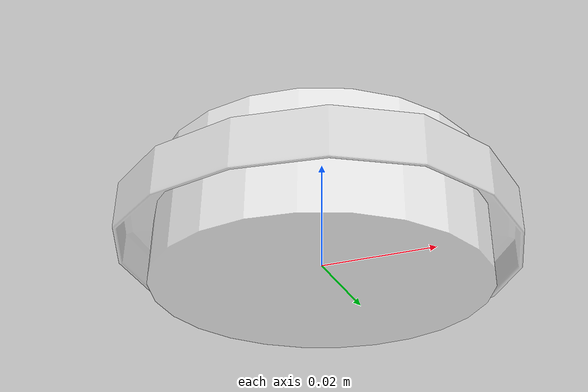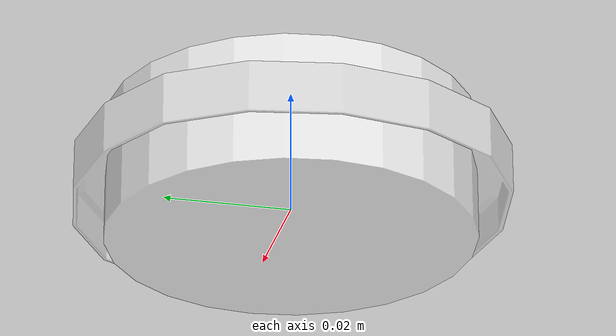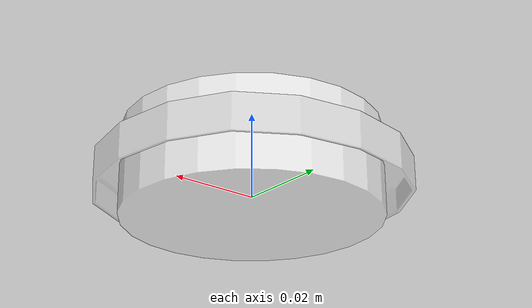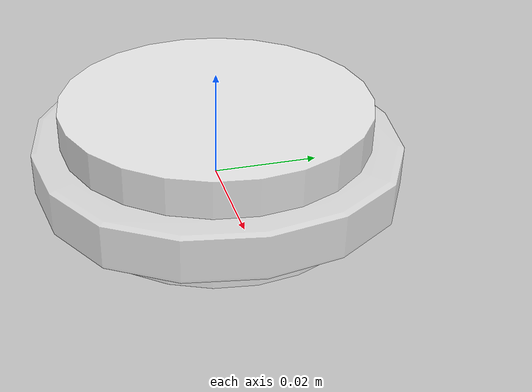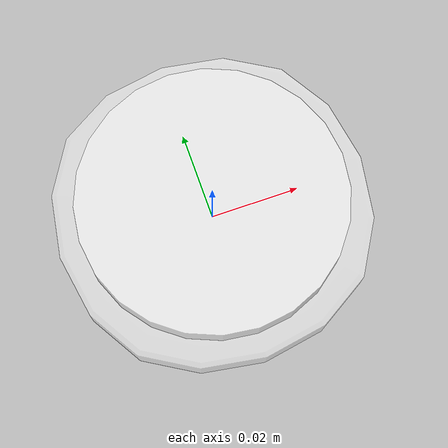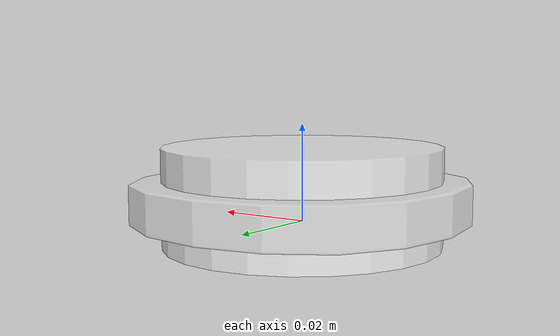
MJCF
<?xml version="1.0" ?>
<!-- @bbox dx=0.063 dy=0.063 dz=0.013 -->
<mujoco model="petri_dish">
  <asset>
    <material name="petri_dish_material" specular="0.9" shininess="0.9" rgba="0.95 0.95 0.95 0.55"/>
    <mesh file="petri_dish.obj" scale="0.011461720438521849 0.011461720438521849 0.011461720438521849"/>
    <mesh file="petri_dish/petri_dish_collision_0.obj" scale="0.011461720438521849 0.011461720438521849 0.011461720438521849"/>
    <mesh file="petri_dish/petri_dish_collision_1.obj" scale="0.011461720438521849 0.011461720438521849 0.011461720438521849"/>
    <mesh file="petri_dish/petri_dish_collision_2.obj" scale="0.011461720438521849 0.011461720438521849 0.011461720438521849"/>
    <mesh file="petri_dish/petri_dish_collision_3.obj" scale="0.011461720438521849 0.011461720438521849 0.011461720438521849"/>
    <mesh file="petri_dish/petri_dish_collision_4.obj" scale="0.011461720438521849 0.011461720438521849 0.011461720438521849"/>
    <mesh file="petri_dish/petri_dish_collision_5.obj" scale="0.011461720438521849 0.011461720438521849 0.011461720438521849"/>
    <mesh file="petri_dish/petri_dish_collision_6.obj" scale="0.011461720438521849 0.011461720438521849 0.011461720438521849"/>
    <mesh file="petri_dish/petri_dish_collision_7.obj" scale="0.011461720438521849 0.011461720438521849 0.011461720438521849"/>
    <mesh file="petri_dish/petri_dish_collision_8.obj" scale="0.011461720438521849 0.011461720438521849 0.011461720438521849"/>
    <mesh file="petri_dish/petri_dish_collision_9.obj" scale="0.011461720438521849 0.011461720438521849 0.011461720438521849"/>
    <mesh file="petri_dish/petri_dish_collision_10.obj" scale="0.011461720438521849 0.011461720438521849 0.011461720438521849"/>
    <mesh file="petri_dish/petri_dish_collision_11.obj" scale="0.011461720438521849 0.011461720438521849 0.011461720438521849"/>
    <mesh file="petri_dish/petri_dish_collision_12.obj" scale="0.011461720438521849 0.011461720438521849 0.011461720438521849"/>
    <mesh file="petri_dish/petri_dish_collision_13.obj" scale="0.011461720438521849 0.011461720438521849 0.011461720438521849"/>
    <mesh file="petri_dish/petri_dish_collision_14.obj" scale="0.011461720438521849 0.011461720438521849 0.011461720438521849"/>
    <mesh file="petri_dish/petri_dish_collision_15.obj" scale="0.011461720438521849 0.011461720438521849 0.011461720438521849"/>
    <mesh file="petri_dish/petri_dish_collision_16.obj" scale="0.011461720438521849 0.011461720438521849 0.011461720438521849"/>
    <mesh file="petri_dish/petri_dish_collision_17.obj" scale="0.011461720438521849 0.011461720438521849 0.011461720438521849"/>
    <mesh file="petri_dish/petri_dish_collision_18.obj" scale="0.011461720438521849 0.011461720438521849 0.011461720438521849"/>
    <mesh file="petri_dish/petri_dish_collision_19.obj" scale="0.011461720438521849 0.011461720438521849 0.011461720438521849"/>
    <mesh file="petri_dish/petri_dish_collision_20.obj" scale="0.011461720438521849 0.011461720438521849 0.011461720438521849"/>
    <mesh file="petri_dish/petri_dish_collision_21.obj" scale="0.011461720438521849 0.011461720438521849 0.011461720438521849"/>
    <mesh file="petri_dish/petri_dish_collision_22.obj" scale="0.011461720438521849 0.011461720438521849 0.011461720438521849"/>
    <mesh file="petri_dish/petri_dish_collision_23.obj" scale="0.011461720438521849 0.011461720438521849 0.011461720438521849"/>
    <mesh file="petri_dish/petri_dish_collision_24.obj" scale="0.011461720438521849 0.011461720438521849 0.011461720438521849"/>
    <mesh file="petri_dish/petri_dish_collision_25.obj" scale="0.011461720438521849 0.011461720438521849 0.011461720438521849"/>
    <mesh file="petri_dish/petri_dish_collision_26.obj" scale="0.011461720438521849 0.011461720438521849 0.011461720438521849"/>
      <material name="CaSO4" rgba="1 1 1 0.7"/>
    <material name="CuCl2" rgba="0.141 1.0 0.174 0.4"/>
    <material name="CuSO4" rgba="0 0.45 1 0.4"/>
    <material name="FeCl3" rgba="0.6475 0.5686 0.023 0.4"/>
    <material name="KMnO4" rgba="0.5 0 0.5 0.4"/>
    <material name="I2" rgba="0.3 0.13 0.0 0.4"/>
    <material name="K2CrO4" rgba="0.57 0.12 0.013 0.4"/>
    <material name="NaCl" rgba="1 1 1 0.3"/>
</asset>
  <worldbody>
    <body name="petri_dish">
      <inertial pos="0.000000 0.000000 0.004339" mass="0.02" diaginertia="0.0008 0.0008 0.0005"/>
      <geom material="petri_dish_material" mesh="petri_dish" class="visual"/>
      <geom mesh="petri_dish_collision_0"  class="collision"/>
      <geom mesh="petri_dish_collision_1"  class="collision"/>
      <geom mesh="petri_dish_collision_2"  class="collision"/>
      <geom mesh="petri_dish_collision_3"  class="collision"/>
      <geom mesh="petri_dish_collision_4"  class="collision"/>
      <geom mesh="petri_dish_collision_5"  class="collision"/>
      <geom mesh="petri_dish_collision_6"  class="collision"/>
      <geom mesh="petri_dish_collision_7"  class="collision"/>
      <geom mesh="petri_dish_collision_8"  class="collision"/>
      <geom mesh="petri_dish_collision_9"  class="collision"/>
      <geom mesh="petri_dish_collision_10"  class="collision"/>
      <geom mesh="petri_dish_collision_11"  class="collision"/>
      <geom mesh="petri_dish_collision_12"  class="collision"/>
      <geom mesh="petri_dish_collision_13"  class="collision"/>
      <geom mesh="petri_dish_collision_14"  class="collision"/>
      <geom mesh="petri_dish_collision_15"  class="collision"/>
      <geom mesh="petri_dish_collision_16"  class="collision"/>
      <geom mesh="petri_dish_collision_17"  class="collision"/>
      <geom mesh="petri_dish_collision_18"  class="collision"/>
      <geom mesh="petri_dish_collision_19"  class="collision"/>
      <geom mesh="petri_dish_collision_20"  class="collision"/>
      <geom mesh="petri_dish_collision_21"  class="collision"/>
      <geom mesh="petri_dish_collision_22"  class="collision"/>
      <geom mesh="petri_dish_collision_23"  class="collision"/>
      <geom mesh="petri_dish_collision_24"  class="collision"/>
      <geom mesh="petri_dish_collision_25"  class="collision"/>
      <geom mesh="petri_dish_collision_26"  class="collision"/>
      <site class="grasppoint" name="grasppoint" pos="0.00000 0.00000 0.01125" group="4"/>
          <geom name="solution" type="cylinder" size="0.02884 0.010297" pos="0.00000 0.00000 0.005162" material="CaSO4" class="visual"/>
      <site name="top_site" pos="0.00000 0.00000 0.013000" size="0.01" rgba="1 0 0 0"/>
      <site name="bottom_site" pos="0.00000 0.00000 0.00000" size="0.01" rgba="0 1 0 0"/>
      <site class="placepoint" name="placepoint" pos="0 0 0.030" rgba="0 0 1 0" group="2"/>
      <!-- bound_sites (group=3): 培养皿 AABB 8 角 -->
      <site class="boundpoint" name="bnd_p0"   pos="-0.0315 -0.0315 0.000" rgba="0 0 0 0" group="3"/>
      <site class="boundpoint" name="bnd_px"   pos=" 0.0315 -0.0315 0.000" rgba="0 0 0 0" group="3"/>
      <site class="boundpoint" name="bnd_py"   pos="-0.0315  0.0315 0.000" rgba="0 0 0 0" group="3"/>
      <site class="boundpoint" name="bnd_pxy"  pos=" 0.0315  0.0315 0.000" rgba="0 0 0 0" group="3"/>
      <site class="boundpoint" name="bnd_pz"   pos="-0.0315 -0.0315 0.013" rgba="0 0 0 0" group="3"/>
      <site class="boundpoint" name="bnd_pxz"  pos=" 0.0315 -0.0315 0.013" rgba="0 0 0 0" group="3"/>
      <site class="boundpoint" name="bnd_pyz"  pos="-0.0315  0.0315 0.013" rgba="0 0 0 0" group="3"/>
      <site class="boundpoint" name="bnd_pxyz" pos=" 0.0315  0.0315 0.013" rgba="0 0 0 0" group="3"/>
</body>
  </worldbody>
  <compiler boundmass="0.015" boundinertia="1e-05" angle="radian"/>
  <default>
    <default class="visual">
      <geom group="2" type="mesh" contype="0" conaffinity="0" density="50"/>
    </default>
    <default class="collision">
      <geom group="3" type="mesh" density="50" friction="1.5 0.1 0.1" solimp="0.9 0.95 0.001" solref="0.02 1"/>
    </default>
    <default class="grasppoint">
      <site type="sphere" size="0.005" group="4" rgba="0 0 1 1"/>
    </default>
    <default class="boundpoint">
      <site type="sphere" size="0.01" group="3" rgba="1 0 0 1"/>
    </default>
    <default class="placepoint">
      <site type="sphere" size="0.01" group="2" rgba="0 0 1 0"/>
    </default>
  </default>
</mujoco>
